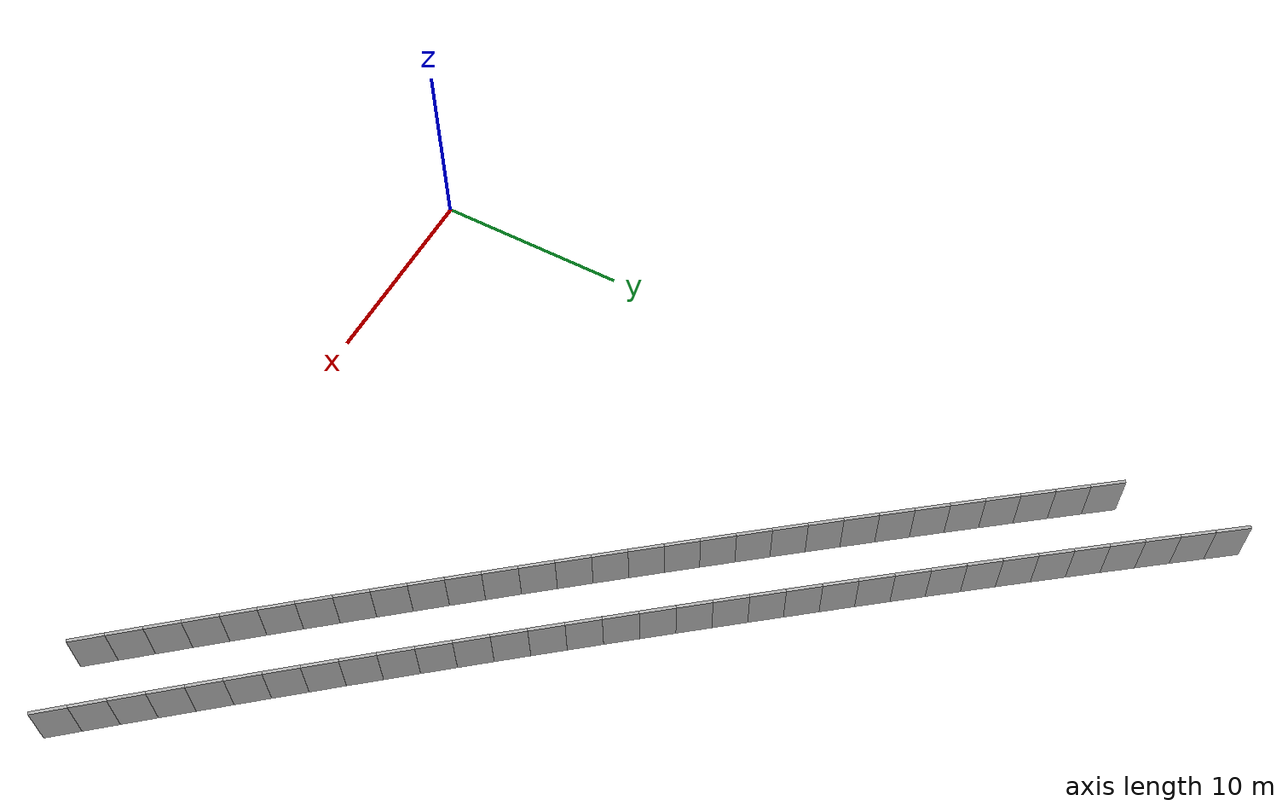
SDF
<?xml version="1.0" ?>
<sdf version="1.6">
  <model name="sps_4924">
    <pose frame="">0 0 0 0 -0 0</pose>
    <static>1</static>
    <self_collide>0</self_collide>
    <allow_auto_disable>0</allow_auto_disable>
    <link name="Wall6543">
      <kinematic>0</kinematic>
      <gravity>1</gravity>
      <self_collide>0</self_collide>
      <collision name="collision">
        <geometry>
          <box>
            <size>1.68618 0.15 2.5</size>
          </box>
        </geometry>
        <pose frame="">0 0 0 0 -0 0</pose>
      </collision>
      <visual name="visual">
        <geometry>
          <box>
            <size>1.68618 0.15 2.5</size>
          </box>
        </geometry>
        <pose frame="">0 0 0 0 -0 0</pose>
        <cast_shadows>1</cast_shadows>
        <transparency>0.0</transparency>
      </visual>
      <pose frame="">0.985374 37.1792 1.25 0 0 -0.926926</pose>
    </link>
    <link name="Wall6544">
      <kinematic>0</kinematic>
      <gravity>1</gravity>
      <self_collide>0</self_collide>
      <collision name="collision">
        <geometry>
          <box>
            <size>1.68609 0.15 2.5</size>
          </box>
        </geometry>
        <pose frame="">0 0 0 0 -0 0</pose>
      </collision>
      <visual name="visual">
        <geometry>
          <box>
            <size>1.68609 0.15 2.5</size>
          </box>
        </geometry>
        <pose frame="">0 0 0 0 -0 0</pose>
        <cast_shadows>1</cast_shadows>
        <transparency>0.0</transparency>
      </visual>
      <pose frame="">1.99856 35.8314 1.25 0 0 -0.925435</pose>
    </link>
    <link name="Wall6545">
      <kinematic>0</kinematic>
      <gravity>1</gravity>
      <self_collide>0</self_collide>
      <collision name="collision">
        <geometry>
          <box>
            <size>1.68644 0.15 2.5</size>
          </box>
        </geometry>
        <pose frame="">0 0 0 0 -0 0</pose>
      </collision>
      <visual name="visual">
        <geometry>
          <box>
            <size>1.68644 0.15 2.5</size>
          </box>
        </geometry>
        <pose frame="">0 0 0 0 -0 0</pose>
        <cast_shadows>1</cast_shadows>
        <transparency>0.0</transparency>
      </visual>
      <pose frame="">3.01406 34.4852 1.25 0 0 -0.923596</pose>
    </link>
    <link name="Wall6546">
      <kinematic>0</kinematic>
      <gravity>1</gravity>
      <self_collide>0</self_collide>
      <collision name="collision">
        <geometry>
          <box>
            <size>1.68606 0.15 2.5</size>
          </box>
        </geometry>
        <pose frame="">0 0 0 0 -0 0</pose>
      </collision>
      <visual name="visual">
        <geometry>
          <box>
            <size>1.68606 0.15 2.5</size>
          </box>
        </geometry>
        <pose frame="">0 0 0 0 -0 0</pose>
        <cast_shadows>1</cast_shadows>
        <transparency>0.0</transparency>
      </visual>
      <pose frame="">4.03188 33.1408 1.25 0 0 -0.921974</pose>
    </link>
    <link name="Wall6547">
      <kinematic>0</kinematic>
      <gravity>1</gravity>
      <self_collide>0</self_collide>
      <collision name="collision">
        <geometry>
          <box>
            <size>1.68619 0.15 2.5</size>
          </box>
        </geometry>
        <pose frame="">0 0 0 0 -0 0</pose>
      </collision>
      <visual name="visual">
        <geometry>
          <box>
            <size>1.68619 0.15 2.5</size>
          </box>
        </geometry>
        <pose frame="">0 0 0 0 -0 0</pose>
        <cast_shadows>1</cast_shadows>
        <transparency>0.0</transparency>
      </visual>
      <pose frame="">5.05187 31.7982 1.25 0 0 -0.920258</pose>
    </link>
    <link name="Wall6548">
      <kinematic>0</kinematic>
      <gravity>1</gravity>
      <self_collide>0</self_collide>
      <collision name="collision">
        <geometry>
          <box>
            <size>1.68626 0.15 2.5</size>
          </box>
        </geometry>
        <pose frame="">0 0 0 0 -0 0</pose>
      </collision>
      <visual name="visual">
        <geometry>
          <box>
            <size>1.68626 0.15 2.5</size>
          </box>
        </geometry>
        <pose frame="">0 0 0 0 -0 0</pose>
        <cast_shadows>1</cast_shadows>
        <transparency>0.0</transparency>
      </visual>
      <pose frame="">6.07415 30.4572 1.25 0 0 -0.918652</pose>
    </link>
    <link name="Wall6549">
      <kinematic>0</kinematic>
      <gravity>1</gravity>
      <self_collide>0</self_collide>
      <collision name="collision">
        <geometry>
          <box>
            <size>1.68603 0.15 2.5</size>
          </box>
        </geometry>
        <pose frame="">0 0 0 0 -0 0</pose>
      </collision>
      <visual name="visual">
        <geometry>
          <box>
            <size>1.68603 0.15 2.5</size>
          </box>
        </geometry>
        <pose frame="">0 0 0 0 -0 0</pose>
        <cast_shadows>1</cast_shadows>
        <transparency>0.0</transparency>
      </visual>
      <pose frame="">7.09866 29.118 1.25 0 0 -0.916862</pose>
    </link>
    <link name="Wall6550">
      <kinematic>0</kinematic>
      <gravity>1</gravity>
      <self_collide>0</self_collide>
      <collision name="collision">
        <geometry>
          <box>
            <size>1.68633 0.15 2.5</size>
          </box>
        </geometry>
        <pose frame="">0 0 0 0 -0 0</pose>
      </collision>
      <visual name="visual">
        <geometry>
          <box>
            <size>1.68633 0.15 2.5</size>
          </box>
        </geometry>
        <pose frame="">0 0 0 0 -0 0</pose>
        <cast_shadows>1</cast_shadows>
        <transparency>0.0</transparency>
      </visual>
      <pose frame="">8.12545 27.7805 1.25 0 0 -0.915264</pose>
    </link>
    <link name="Wall6551">
      <kinematic>0</kinematic>
      <gravity>1</gravity>
      <self_collide>0</self_collide>
      <collision name="collision">
        <geometry>
          <box>
            <size>1.68611 0.15 2.5</size>
          </box>
        </geometry>
        <pose frame="">0 0 0 0 -0 0</pose>
      </collision>
      <visual name="visual">
        <geometry>
          <box>
            <size>1.68611 0.15 2.5</size>
          </box>
        </geometry>
        <pose frame="">0 0 0 0 -0 0</pose>
        <cast_shadows>1</cast_shadows>
        <transparency>0.0</transparency>
      </visual>
      <pose frame="">9.15453 26.4447 1.25 0 0 -0.913474</pose>
    </link>
    <link name="Wall6552">
      <kinematic>0</kinematic>
      <gravity>1</gravity>
      <self_collide>0</self_collide>
      <collision name="collision">
        <geometry>
          <box>
            <size>1.6862 0.15 2.5</size>
          </box>
        </geometry>
        <pose frame="">0 0 0 0 -0 0</pose>
      </collision>
      <visual name="visual">
        <geometry>
          <box>
            <size>1.6862 0.15 2.5</size>
          </box>
        </geometry>
        <pose frame="">0 0 0 0 -0 0</pose>
        <cast_shadows>1</cast_shadows>
        <transparency>0.0</transparency>
      </visual>
      <pose frame="">10.1858 25.1107 1.25 0 0 -0.911867</pose>
    </link>
    <link name="Wall6553">
      <kinematic>0</kinematic>
      <gravity>1</gravity>
      <self_collide>0</self_collide>
      <collision name="collision">
        <geometry>
          <box>
            <size>1.68615 0.15 2.5</size>
          </box>
        </geometry>
        <pose frame="">0 0 0 0 -0 0</pose>
      </collision>
      <visual name="visual">
        <geometry>
          <box>
            <size>1.68615 0.15 2.5</size>
          </box>
        </geometry>
        <pose frame="">0 0 0 0 -0 0</pose>
        <cast_shadows>1</cast_shadows>
        <transparency>0.0</transparency>
      </visual>
      <pose frame="">11.2194 23.7784 1.25 0 0 -0.910194</pose>
    </link>
    <link name="Wall6554">
      <kinematic>0</kinematic>
      <gravity>1</gravity>
      <self_collide>0</self_collide>
      <collision name="collision">
        <geometry>
          <box>
            <size>1.68631 0.15 2.5</size>
          </box>
        </geometry>
        <pose frame="">0 0 0 0 -0 0</pose>
      </collision>
      <visual name="visual">
        <geometry>
          <box>
            <size>1.68631 0.15 2.5</size>
          </box>
        </geometry>
        <pose frame="">0 0 0 0 -0 0</pose>
        <cast_shadows>1</cast_shadows>
        <transparency>0.0</transparency>
      </visual>
      <pose frame="">12.2551 22.4478 1.25 0 0 -0.90848</pose>
    </link>
    <link name="Wall6555">
      <kinematic>0</kinematic>
      <gravity>1</gravity>
      <self_collide>0</self_collide>
      <collision name="collision">
        <geometry>
          <box>
            <size>1.68612 0.15 2.5</size>
          </box>
        </geometry>
        <pose frame="">0 0 0 0 -0 0</pose>
      </collision>
      <visual name="visual">
        <geometry>
          <box>
            <size>1.68612 0.15 2.5</size>
          </box>
        </geometry>
        <pose frame="">0 0 0 0 -0 0</pose>
        <cast_shadows>1</cast_shadows>
        <transparency>0.0</transparency>
      </visual>
      <pose frame="">13.2932 21.119 1.25 0 0 -0.90674</pose>
    </link>
    <link name="Wall6556">
      <kinematic>0</kinematic>
      <gravity>1</gravity>
      <self_collide>0</self_collide>
      <collision name="collision">
        <geometry>
          <box>
            <size>1.68622 0.15 2.5</size>
          </box>
        </geometry>
        <pose frame="">0 0 0 0 -0 0</pose>
      </collision>
      <visual name="visual">
        <geometry>
          <box>
            <size>1.68622 0.15 2.5</size>
          </box>
        </geometry>
        <pose frame="">0 0 0 0 -0 0</pose>
        <cast_shadows>1</cast_shadows>
        <transparency>0.0</transparency>
      </visual>
      <pose frame="">14.3335 19.792 1.25 0 0 -0.905083</pose>
    </link>
    <link name="Wall6557">
      <kinematic>0</kinematic>
      <gravity>1</gravity>
      <self_collide>0</self_collide>
      <collision name="collision">
        <geometry>
          <box>
            <size>1.68634 0.15 2.5</size>
          </box>
        </geometry>
        <pose frame="">0 0 0 0 -0 0</pose>
      </collision>
      <visual name="visual">
        <geometry>
          <box>
            <size>1.68634 0.15 2.5</size>
          </box>
        </geometry>
        <pose frame="">0 0 0 0 -0 0</pose>
        <cast_shadows>1</cast_shadows>
        <transparency>0.0</transparency>
      </visual>
      <pose frame="">15.3761 18.4666 1.25 0 0 -0.903528</pose>
    </link>
    <link name="Wall6558">
      <kinematic>0</kinematic>
      <gravity>1</gravity>
      <self_collide>0</self_collide>
      <collision name="collision">
        <geometry>
          <box>
            <size>1.68622 0.15 2.5</size>
          </box>
        </geometry>
        <pose frame="">0 0 0 0 -0 0</pose>
      </collision>
      <visual name="visual">
        <geometry>
          <box>
            <size>1.68622 0.15 2.5</size>
          </box>
        </geometry>
        <pose frame="">0 0 0 0 -0 0</pose>
        <cast_shadows>1</cast_shadows>
        <transparency>0.0</transparency>
      </visual>
      <pose frame="">16.4209 17.143 1.25 0 0 -0.901629</pose>
    </link>
    <link name="Wall6559">
      <kinematic>0</kinematic>
      <gravity>1</gravity>
      <self_collide>0</self_collide>
      <collision name="collision">
        <geometry>
          <box>
            <size>1.68605 0.15 2.5</size>
          </box>
        </geometry>
        <pose frame="">0 0 0 0 -0 0</pose>
      </collision>
      <visual name="visual">
        <geometry>
          <box>
            <size>1.68605 0.15 2.5</size>
          </box>
        </geometry>
        <pose frame="">0 0 0 0 -0 0</pose>
        <cast_shadows>1</cast_shadows>
        <transparency>0.0</transparency>
      </visual>
      <pose frame="">17.4679 15.8213 1.25 0 0 -0.900069</pose>
    </link>
    <link name="Wall6560">
      <kinematic>0</kinematic>
      <gravity>1</gravity>
      <self_collide>0</self_collide>
      <collision name="collision">
        <geometry>
          <box>
            <size>1.68611 0.15 2.5</size>
          </box>
        </geometry>
        <pose frame="">0 0 0 0 -0 0</pose>
      </collision>
      <visual name="visual">
        <geometry>
          <box>
            <size>1.68611 0.15 2.5</size>
          </box>
        </geometry>
        <pose frame="">0 0 0 0 -0 0</pose>
        <cast_shadows>1</cast_shadows>
        <transparency>0.0</transparency>
      </visual>
      <pose frame="">18.5171 14.5015 1.25 0 0 -0.898108</pose>
    </link>
    <link name="Wall6561">
      <kinematic>0</kinematic>
      <gravity>1</gravity>
      <self_collide>0</self_collide>
      <collision name="collision">
        <geometry>
          <box>
            <size>1.6862 0.15 2.5</size>
          </box>
        </geometry>
        <pose frame="">0 0 0 0 -0 0</pose>
      </collision>
      <visual name="visual">
        <geometry>
          <box>
            <size>1.6862 0.15 2.5</size>
          </box>
        </geometry>
        <pose frame="">0 0 0 0 -0 0</pose>
        <cast_shadows>1</cast_shadows>
        <transparency>0.0</transparency>
      </visual>
      <pose frame="">19.5687 13.1834 1.25 0 0 -0.896762</pose>
    </link>
    <link name="Wall6562">
      <kinematic>0</kinematic>
      <gravity>1</gravity>
      <self_collide>0</self_collide>
      <collision name="collision">
        <geometry>
          <box>
            <size>1.68621 0.15 2.5</size>
          </box>
        </geometry>
        <pose frame="">0 0 0 0 -0 0</pose>
      </collision>
      <visual name="visual">
        <geometry>
          <box>
            <size>1.68621 0.15 2.5</size>
          </box>
        </geometry>
        <pose frame="">0 0 0 0 -0 0</pose>
        <cast_shadows>1</cast_shadows>
        <transparency>0.0</transparency>
      </visual>
      <pose frame="">20.6223 11.8669 1.25 0 0 -0.894959</pose>
    </link>
    <link name="Wall6563">
      <kinematic>0</kinematic>
      <gravity>1</gravity>
      <self_collide>0</self_collide>
      <collision name="collision">
        <geometry>
          <box>
            <size>1.68621 0.15 2.5</size>
          </box>
        </geometry>
        <pose frame="">0 0 0 0 -0 0</pose>
      </collision>
      <visual name="visual">
        <geometry>
          <box>
            <size>1.68621 0.15 2.5</size>
          </box>
        </geometry>
        <pose frame="">0 0 0 0 -0 0</pose>
        <cast_shadows>1</cast_shadows>
        <transparency>0.0</transparency>
      </visual>
      <pose frame="">21.6782 10.5522 1.25 0 0 -0.893336</pose>
    </link>
    <link name="Wall6564">
      <kinematic>0</kinematic>
      <gravity>1</gravity>
      <self_collide>0</self_collide>
      <collision name="collision">
        <geometry>
          <box>
            <size>1.68635 0.15 2.5</size>
          </box>
        </geometry>
        <pose frame="">0 0 0 0 -0 0</pose>
      </collision>
      <visual name="visual">
        <geometry>
          <box>
            <size>1.68635 0.15 2.5</size>
          </box>
        </geometry>
        <pose frame="">0 0 0 0 -0 0</pose>
        <cast_shadows>1</cast_shadows>
        <transparency>0.0</transparency>
      </visual>
      <pose frame="">22.7362 9.23918 1.25 0 0 -0.89168</pose>
    </link>
    <link name="Wall6565">
      <kinematic>0</kinematic>
      <gravity>1</gravity>
      <self_collide>0</self_collide>
      <collision name="collision">
        <geometry>
          <box>
            <size>1.68616 0.15 2.5</size>
          </box>
        </geometry>
        <pose frame="">0 0 0 0 -0 0</pose>
      </collision>
      <visual name="visual">
        <geometry>
          <box>
            <size>1.68616 0.15 2.5</size>
          </box>
        </geometry>
        <pose frame="">0 0 0 0 -0 0</pose>
        <cast_shadows>1</cast_shadows>
        <transparency>0.0</transparency>
      </visual>
      <pose frame="">23.7965 7.92799 1.25 0 0 -0.889916</pose>
    </link>
    <link name="Wall6566">
      <kinematic>0</kinematic>
      <gravity>1</gravity>
      <self_collide>0</self_collide>
      <collision name="collision">
        <geometry>
          <box>
            <size>1.68617 0.15 2.5</size>
          </box>
        </geometry>
        <pose frame="">0 0 0 0 -0 0</pose>
      </collision>
      <visual name="visual">
        <geometry>
          <box>
            <size>1.68617 0.15 2.5</size>
          </box>
        </geometry>
        <pose frame="">0 0 0 0 -0 0</pose>
        <cast_shadows>1</cast_shadows>
        <transparency>0.0</transparency>
      </visual>
      <pose frame="">24.859 6.6187 1.25 0 0 -0.888243</pose>
    </link>
    <link name="Wall6567">
      <kinematic>0</kinematic>
      <gravity>1</gravity>
      <self_collide>0</self_collide>
      <collision name="collision">
        <geometry>
          <box>
            <size>1.68614 0.15 2.5</size>
          </box>
        </geometry>
        <pose frame="">0 0 0 0 -0 0</pose>
      </collision>
      <visual name="visual">
        <geometry>
          <box>
            <size>1.68614 0.15 2.5</size>
          </box>
        </geometry>
        <pose frame="">0 0 0 0 -0 0</pose>
        <cast_shadows>1</cast_shadows>
        <transparency>0.0</transparency>
      </visual>
      <pose frame="">25.9237 5.3112 1.25 0 0 -0.886547</pose>
    </link>
    <link name="Wall6568">
      <kinematic>0</kinematic>
      <gravity>1</gravity>
      <self_collide>0</self_collide>
      <collision name="collision">
        <geometry>
          <box>
            <size>1.6862 0.15 2.5</size>
          </box>
        </geometry>
        <pose frame="">0 0 0 0 -0 0</pose>
      </collision>
      <visual name="visual">
        <geometry>
          <box>
            <size>1.6862 0.15 2.5</size>
          </box>
        </geometry>
        <pose frame="">0 0 0 0 -0 0</pose>
        <cast_shadows>1</cast_shadows>
        <transparency>0.0</transparency>
      </visual>
      <pose frame="">26.9907 4.00551 1.25 0 0 -0.884845</pose>
    </link>
    <link name="Wall6569">
      <kinematic>0</kinematic>
      <gravity>1</gravity>
      <self_collide>0</self_collide>
      <collision name="collision">
        <geometry>
          <box>
            <size>1.68633 0.15 2.5</size>
          </box>
        </geometry>
        <pose frame="">0 0 0 0 -0 0</pose>
      </collision>
      <visual name="visual">
        <geometry>
          <box>
            <size>1.68633 0.15 2.5</size>
          </box>
        </geometry>
        <pose frame="">0 0 0 0 -0 0</pose>
        <cast_shadows>1</cast_shadows>
        <transparency>0.0</transparency>
      </visual>
      <pose frame="">28.0598 2.70149 1.25 0 0 -0.883269</pose>
    </link>
    <link name="Wall6570">
      <kinematic>0</kinematic>
      <gravity>1</gravity>
      <self_collide>0</self_collide>
      <collision name="collision">
        <geometry>
          <box>
            <size>1.68628 0.15 2.5</size>
          </box>
        </geometry>
        <pose frame="">0 0 0 0 -0 0</pose>
      </collision>
      <visual name="visual">
        <geometry>
          <box>
            <size>1.68628 0.15 2.5</size>
          </box>
        </geometry>
        <pose frame="">0 0 0 0 -0 0</pose>
        <cast_shadows>1</cast_shadows>
        <transparency>0.0</transparency>
      </visual>
      <pose frame="">29.1312 1.39928 1.25 0 0 -0.88142</pose>
    </link>
    <link name="Wall6571">
      <kinematic>0</kinematic>
      <gravity>1</gravity>
      <self_collide>0</self_collide>
      <collision name="collision">
        <geometry>
          <box>
            <size>1.68604 0.15 2.5</size>
          </box>
        </geometry>
        <pose frame="">0 0 0 0 -0 0</pose>
      </collision>
      <visual name="visual">
        <geometry>
          <box>
            <size>1.68604 0.15 2.5</size>
          </box>
        </geometry>
        <pose frame="">0 0 0 0 -0 0</pose>
        <cast_shadows>1</cast_shadows>
        <transparency>0.0</transparency>
      </visual>
      <pose frame="">30.2046 0.0989827 1.25 0 0 -0.879891</pose>
    </link>
    <link name="Wall9169">
      <kinematic>0</kinematic>
      <gravity>1</gravity>
      <self_collide>0</self_collide>
      <collision name="collision">
        <geometry>
          <box>
            <size>1.68079 0.15 2.5</size>
          </box>
        </geometry>
        <pose frame="">0 0 0 0 -0 0</pose>
      </collision>
      <visual name="visual">
        <geometry>
          <box>
            <size>1.68079 0.15 2.5</size>
          </box>
        </geometry>
        <pose frame="">0 0 0 0 -0 0</pose>
        <cast_shadows>1</cast_shadows>
        <transparency>0.0</transparency>
      </visual>
      <pose frame="">33.7429 0.843886 1.25 0 -0 2.26334</pose>
    </link>
    <link name="Wall9170">
      <kinematic>0</kinematic>
      <gravity>1</gravity>
      <self_collide>0</self_collide>
      <collision name="collision">
        <geometry>
          <box>
            <size>1.68082 0.15 2.5</size>
          </box>
        </geometry>
        <pose frame="">0 0 0 0 -0 0</pose>
      </collision>
      <visual name="visual">
        <geometry>
          <box>
            <size>1.68082 0.15 2.5</size>
          </box>
        </geometry>
        <pose frame="">0 0 0 0 -0 0</pose>
        <cast_shadows>1</cast_shadows>
        <transparency>0.0</transparency>
      </visual>
      <pose frame="">32.6706 2.13829 1.25 0 -0 2.26182</pose>
    </link>
    <link name="Wall9171">
      <kinematic>0</kinematic>
      <gravity>1</gravity>
      <self_collide>0</self_collide>
      <collision name="collision">
        <geometry>
          <box>
            <size>1.68088 0.15 2.5</size>
          </box>
        </geometry>
        <pose frame="">0 0 0 0 -0 0</pose>
      </collision>
      <visual name="visual">
        <geometry>
          <box>
            <size>1.68088 0.15 2.5</size>
          </box>
        </geometry>
        <pose frame="">0 0 0 0 -0 0</pose>
        <cast_shadows>1</cast_shadows>
        <transparency>0.0</transparency>
      </visual>
      <pose frame="">31.6005 3.43449 1.25 0 -0 2.26004</pose>
    </link>
    <link name="Wall9172">
      <kinematic>0</kinematic>
      <gravity>1</gravity>
      <self_collide>0</self_collide>
      <collision name="collision">
        <geometry>
          <box>
            <size>1.68094 0.15 2.5</size>
          </box>
        </geometry>
        <pose frame="">0 0 0 0 -0 0</pose>
      </collision>
      <visual name="visual">
        <geometry>
          <box>
            <size>1.68094 0.15 2.5</size>
          </box>
        </geometry>
        <pose frame="">0 0 0 0 -0 0</pose>
        <cast_shadows>1</cast_shadows>
        <transparency>0.0</transparency>
      </visual>
      <pose frame="">30.5326 4.73259 1.25 0 -0 2.25837</pose>
    </link>
    <link name="Wall9173">
      <kinematic>0</kinematic>
      <gravity>1</gravity>
      <self_collide>0</self_collide>
      <collision name="collision">
        <geometry>
          <box>
            <size>1.68074 0.15 2.5</size>
          </box>
        </geometry>
        <pose frame="">0 0 0 0 -0 0</pose>
      </collision>
      <visual name="visual">
        <geometry>
          <box>
            <size>1.68074 0.15 2.5</size>
          </box>
        </geometry>
        <pose frame="">0 0 0 0 -0 0</pose>
        <cast_shadows>1</cast_shadows>
        <transparency>0.0</transparency>
      </visual>
      <pose frame="">29.4669 6.03239 1.25 0 -0 2.25673</pose>
    </link>
    <link name="Wall9174">
      <kinematic>0</kinematic>
      <gravity>1</gravity>
      <self_collide>0</self_collide>
      <collision name="collision">
        <geometry>
          <box>
            <size>1.68076 0.15 2.5</size>
          </box>
        </geometry>
        <pose frame="">0 0 0 0 -0 0</pose>
      </collision>
      <visual name="visual">
        <geometry>
          <box>
            <size>1.68076 0.15 2.5</size>
          </box>
        </geometry>
        <pose frame="">0 0 0 0 -0 0</pose>
        <cast_shadows>1</cast_shadows>
        <transparency>0.0</transparency>
      </visual>
      <pose frame="">28.4035 7.33391 1.25 0 -0 2.25503</pose>
    </link>
    <link name="Wall9175">
      <kinematic>0</kinematic>
      <gravity>1</gravity>
      <self_collide>0</self_collide>
      <collision name="collision">
        <geometry>
          <box>
            <size>1.68093 0.15 2.5</size>
          </box>
        </geometry>
        <pose frame="">0 0 0 0 -0 0</pose>
      </collision>
      <visual name="visual">
        <geometry>
          <box>
            <size>1.68093 0.15 2.5</size>
          </box>
        </geometry>
        <pose frame="">0 0 0 0 -0 0</pose>
        <cast_shadows>1</cast_shadows>
        <transparency>0.0</transparency>
      </visual>
      <pose frame="">27.3422 8.63731 1.25 0 -0 2.25331</pose>
    </link>
    <link name="Wall9176">
      <kinematic>0</kinematic>
      <gravity>1</gravity>
      <self_collide>0</self_collide>
      <collision name="collision">
        <geometry>
          <box>
            <size>1.68074 0.15 2.5</size>
          </box>
        </geometry>
        <pose frame="">0 0 0 0 -0 0</pose>
      </collision>
      <visual name="visual">
        <geometry>
          <box>
            <size>1.68074 0.15 2.5</size>
          </box>
        </geometry>
        <pose frame="">0 0 0 0 -0 0</pose>
        <cast_shadows>1</cast_shadows>
        <transparency>0.0</transparency>
      </visual>
      <pose frame="">26.283 9.94249 1.25 0 -0 2.25167</pose>
    </link>
    <link name="Wall9177">
      <kinematic>0</kinematic>
      <gravity>1</gravity>
      <self_collide>0</self_collide>
      <collision name="collision">
        <geometry>
          <box>
            <size>1.68078 0.15 2.5</size>
          </box>
        </geometry>
        <pose frame="">0 0 0 0 -0 0</pose>
      </collision>
      <visual name="visual">
        <geometry>
          <box>
            <size>1.68078 0.15 2.5</size>
          </box>
        </geometry>
        <pose frame="">0 0 0 0 -0 0</pose>
        <cast_shadows>1</cast_shadows>
        <transparency>0.0</transparency>
      </visual>
      <pose frame="">25.2262 11.2494 1.25 0 -0 2.24997</pose>
    </link>
    <link name="Wall9178">
      <kinematic>0</kinematic>
      <gravity>1</gravity>
      <self_collide>0</self_collide>
      <collision name="collision">
        <geometry>
          <box>
            <size>1.68083 0.15 2.5</size>
          </box>
        </geometry>
        <pose frame="">0 0 0 0 -0 0</pose>
      </collision>
      <visual name="visual">
        <geometry>
          <box>
            <size>1.68083 0.15 2.5</size>
          </box>
        </geometry>
        <pose frame="">0 0 0 0 -0 0</pose>
        <cast_shadows>1</cast_shadows>
        <transparency>0.0</transparency>
      </visual>
      <pose frame="">24.1715 12.5581 1.25 0 -0 2.24827</pose>
    </link>
    <link name="Wall9179">
      <kinematic>0</kinematic>
      <gravity>1</gravity>
      <self_collide>0</self_collide>
      <collision name="collision">
        <geometry>
          <box>
            <size>1.68083 0.15 2.5</size>
          </box>
        </geometry>
        <pose frame="">0 0 0 0 -0 0</pose>
      </collision>
      <visual name="visual">
        <geometry>
          <box>
            <size>1.68083 0.15 2.5</size>
          </box>
        </geometry>
        <pose frame="">0 0 0 0 -0 0</pose>
        <cast_shadows>1</cast_shadows>
        <transparency>0.0</transparency>
      </visual>
      <pose frame="">23.119 13.8686 1.25 0 -0 2.24659</pose>
    </link>
    <link name="Wall9180">
      <kinematic>0</kinematic>
      <gravity>1</gravity>
      <self_collide>0</self_collide>
      <collision name="collision">
        <geometry>
          <box>
            <size>1.68071 0.15 2.5</size>
          </box>
        </geometry>
        <pose frame="">0 0 0 0 -0 0</pose>
      </collision>
      <visual name="visual">
        <geometry>
          <box>
            <size>1.68071 0.15 2.5</size>
          </box>
        </geometry>
        <pose frame="">0 0 0 0 -0 0</pose>
        <cast_shadows>1</cast_shadows>
        <transparency>0.0</transparency>
      </visual>
      <pose frame="">22.0686 15.1807 1.25 0 -0 2.24516</pose>
    </link>
    <link name="Wall9181">
      <kinematic>0</kinematic>
      <gravity>1</gravity>
      <self_collide>0</self_collide>
      <collision name="collision">
        <geometry>
          <box>
            <size>1.6809 0.15 2.5</size>
          </box>
        </geometry>
        <pose frame="">0 0 0 0 -0 0</pose>
      </collision>
      <visual name="visual">
        <geometry>
          <box>
            <size>1.6809 0.15 2.5</size>
          </box>
        </geometry>
        <pose frame="">0 0 0 0 -0 0</pose>
        <cast_shadows>1</cast_shadows>
        <transparency>0.0</transparency>
      </visual>
      <pose frame="">21.0203 16.4946 1.25 0 -0 2.24321</pose>
    </link>
    <link name="Wall9182">
      <kinematic>0</kinematic>
      <gravity>1</gravity>
      <self_collide>0</self_collide>
      <collision name="collision">
        <geometry>
          <box>
            <size>1.68066 0.15 2.5</size>
          </box>
        </geometry>
        <pose frame="">0 0 0 0 -0 0</pose>
      </collision>
      <visual name="visual">
        <geometry>
          <box>
            <size>1.68066 0.15 2.5</size>
          </box>
        </geometry>
        <pose frame="">0 0 0 0 -0 0</pose>
        <cast_shadows>1</cast_shadows>
        <transparency>0.0</transparency>
      </visual>
      <pose frame="">19.9745 17.8104 1.25 0 -0 2.24152</pose>
    </link>
    <link name="Wall9183">
      <kinematic>0</kinematic>
      <gravity>1</gravity>
      <self_collide>0</self_collide>
      <collision name="collision">
        <geometry>
          <box>
            <size>1.6808 0.15 2.5</size>
          </box>
        </geometry>
        <pose frame="">0 0 0 0 -0 0</pose>
      </collision>
      <visual name="visual">
        <geometry>
          <box>
            <size>1.6808 0.15 2.5</size>
          </box>
        </geometry>
        <pose frame="">0 0 0 0 -0 0</pose>
        <cast_shadows>1</cast_shadows>
        <transparency>0.0</transparency>
      </visual>
      <pose frame="">18.9309 19.1279 1.25 0 -0 2.23992</pose>
    </link>
    <link name="Wall9184">
      <kinematic>0</kinematic>
      <gravity>1</gravity>
      <self_collide>0</self_collide>
      <collision name="collision">
        <geometry>
          <box>
            <size>1.68089 0.15 2.5</size>
          </box>
        </geometry>
        <pose frame="">0 0 0 0 -0 0</pose>
      </collision>
      <visual name="visual">
        <geometry>
          <box>
            <size>1.68089 0.15 2.5</size>
          </box>
        </geometry>
        <pose frame="">0 0 0 0 -0 0</pose>
        <cast_shadows>1</cast_shadows>
        <transparency>0.0</transparency>
      </visual>
      <pose frame="">17.8895 20.4472 1.25 0 -0 2.23817</pose>
    </link>
    <link name="Wall9185">
      <kinematic>0</kinematic>
      <gravity>1</gravity>
      <self_collide>0</self_collide>
      <collision name="collision">
        <geometry>
          <box>
            <size>1.6808 0.15 2.5</size>
          </box>
        </geometry>
        <pose frame="">0 0 0 0 -0 0</pose>
      </collision>
      <visual name="visual">
        <geometry>
          <box>
            <size>1.6808 0.15 2.5</size>
          </box>
        </geometry>
        <pose frame="">0 0 0 0 -0 0</pose>
        <cast_shadows>1</cast_shadows>
        <transparency>0.0</transparency>
      </visual>
      <pose frame="">16.8503 21.7683 1.25 0 -0 2.23646</pose>
    </link>
    <link name="Wall9186">
      <kinematic>0</kinematic>
      <gravity>1</gravity>
      <self_collide>0</self_collide>
      <collision name="collision">
        <geometry>
          <box>
            <size>1.68074 0.15 2.5</size>
          </box>
        </geometry>
        <pose frame="">0 0 0 0 -0 0</pose>
      </collision>
      <visual name="visual">
        <geometry>
          <box>
            <size>1.68074 0.15 2.5</size>
          </box>
        </geometry>
        <pose frame="">0 0 0 0 -0 0</pose>
        <cast_shadows>1</cast_shadows>
        <transparency>0.0</transparency>
      </visual>
      <pose frame="">15.8133 23.0911 1.25 0 -0 2.23482</pose>
    </link>
    <link name="Wall9187">
      <kinematic>0</kinematic>
      <gravity>1</gravity>
      <self_collide>0</self_collide>
      <collision name="collision">
        <geometry>
          <box>
            <size>1.68079 0.15 2.5</size>
          </box>
        </geometry>
        <pose frame="">0 0 0 0 -0 0</pose>
      </collision>
      <visual name="visual">
        <geometry>
          <box>
            <size>1.68079 0.15 2.5</size>
          </box>
        </geometry>
        <pose frame="">0 0 0 0 -0 0</pose>
        <cast_shadows>1</cast_shadows>
        <transparency>0.0</transparency>
      </visual>
      <pose frame="">14.7786 24.4156 1.25 0 -0 2.23309</pose>
    </link>
    <link name="Wall9188">
      <kinematic>0</kinematic>
      <gravity>1</gravity>
      <self_collide>0</self_collide>
      <collision name="collision">
        <geometry>
          <box>
            <size>1.68083 0.15 2.5</size>
          </box>
        </geometry>
        <pose frame="">0 0 0 0 -0 0</pose>
      </collision>
      <visual name="visual">
        <geometry>
          <box>
            <size>1.68083 0.15 2.5</size>
          </box>
        </geometry>
        <pose frame="">0 0 0 0 -0 0</pose>
        <cast_shadows>1</cast_shadows>
        <transparency>0.0</transparency>
      </visual>
      <pose frame="">13.7461 25.7419 1.25 0 -0 2.23147</pose>
    </link>
    <link name="Wall9189">
      <kinematic>0</kinematic>
      <gravity>1</gravity>
      <self_collide>0</self_collide>
      <collision name="collision">
        <geometry>
          <box>
            <size>1.68063 0.15 2.5</size>
          </box>
        </geometry>
        <pose frame="">0 0 0 0 -0 0</pose>
      </collision>
      <visual name="visual">
        <geometry>
          <box>
            <size>1.68063 0.15 2.5</size>
          </box>
        </geometry>
        <pose frame="">0 0 0 0 -0 0</pose>
        <cast_shadows>1</cast_shadows>
        <transparency>0.0</transparency>
      </visual>
      <pose frame="">12.7159 27.0699 1.25 0 -0 2.22972</pose>
    </link>
    <link name="Wall9190">
      <kinematic>0</kinematic>
      <gravity>1</gravity>
      <self_collide>0</self_collide>
      <collision name="collision">
        <geometry>
          <box>
            <size>1.68088 0.15 2.5</size>
          </box>
        </geometry>
        <pose frame="">0 0 0 0 -0 0</pose>
      </collision>
      <visual name="visual">
        <geometry>
          <box>
            <size>1.68088 0.15 2.5</size>
          </box>
        </geometry>
        <pose frame="">0 0 0 0 -0 0</pose>
        <cast_shadows>1</cast_shadows>
        <transparency>0.0</transparency>
      </visual>
      <pose frame="">11.688 28.3997 1.25 0 -0 2.22795</pose>
    </link>
    <link name="Wall9191">
      <kinematic>0</kinematic>
      <gravity>1</gravity>
      <self_collide>0</self_collide>
      <collision name="collision">
        <geometry>
          <box>
            <size>1.68091 0.15 2.5</size>
          </box>
        </geometry>
        <pose frame="">0 0 0 0 -0 0</pose>
      </collision>
      <visual name="visual">
        <geometry>
          <box>
            <size>1.68091 0.15 2.5</size>
          </box>
        </geometry>
        <pose frame="">0 0 0 0 -0 0</pose>
        <cast_shadows>1</cast_shadows>
        <transparency>0.0</transparency>
      </visual>
      <pose frame="">10.6623 29.7313 1.25 0 -0 2.22643</pose>
    </link>
    <link name="Wall9192">
      <kinematic>0</kinematic>
      <gravity>1</gravity>
      <self_collide>0</self_collide>
      <collision name="collision">
        <geometry>
          <box>
            <size>1.68077 0.15 2.5</size>
          </box>
        </geometry>
        <pose frame="">0 0 0 0 -0 0</pose>
      </collision>
      <visual name="visual">
        <geometry>
          <box>
            <size>1.68077 0.15 2.5</size>
          </box>
        </geometry>
        <pose frame="">0 0 0 0 -0 0</pose>
        <cast_shadows>1</cast_shadows>
        <transparency>0.0</transparency>
      </visual>
      <pose frame="">9.63866 31.0645 1.25 0 -0 2.22471</pose>
    </link>
    <link name="Wall9193">
      <kinematic>0</kinematic>
      <gravity>1</gravity>
      <self_collide>0</self_collide>
      <collision name="collision">
        <geometry>
          <box>
            <size>1.68079 0.15 2.5</size>
          </box>
        </geometry>
        <pose frame="">0 0 0 0 -0 0</pose>
      </collision>
      <visual name="visual">
        <geometry>
          <box>
            <size>1.68079 0.15 2.5</size>
          </box>
        </geometry>
        <pose frame="">0 0 0 0 -0 0</pose>
        <cast_shadows>1</cast_shadows>
        <transparency>0.0</transparency>
      </visual>
      <pose frame="">8.61736 32.3994 1.25 0 -0 2.22305</pose>
    </link>
    <link name="Wall9194">
      <kinematic>0</kinematic>
      <gravity>1</gravity>
      <self_collide>0</self_collide>
      <collision name="collision">
        <geometry>
          <box>
            <size>1.68085 0.15 2.5</size>
          </box>
        </geometry>
        <pose frame="">0 0 0 0 -0 0</pose>
      </collision>
      <visual name="visual">
        <geometry>
          <box>
            <size>1.68085 0.15 2.5</size>
          </box>
        </geometry>
        <pose frame="">0 0 0 0 -0 0</pose>
        <cast_shadows>1</cast_shadows>
        <transparency>0.0</transparency>
      </visual>
      <pose frame="">7.59835 33.7361 1.25 0 -0 2.22124</pose>
    </link>
    <link name="Wall9195">
      <kinematic>0</kinematic>
      <gravity>1</gravity>
      <self_collide>0</self_collide>
      <collision name="collision">
        <geometry>
          <box>
            <size>1.68099 0.15 2.5</size>
          </box>
        </geometry>
        <pose frame="">0 0 0 0 -0 0</pose>
      </collision>
      <visual name="visual">
        <geometry>
          <box>
            <size>1.68099 0.15 2.5</size>
          </box>
        </geometry>
        <pose frame="">0 0 0 0 -0 0</pose>
        <cast_shadows>1</cast_shadows>
        <transparency>0.0</transparency>
      </visual>
      <pose frame="">6.58153 35.0746 1.25 0 -0 2.21967</pose>
    </link>
    <link name="Wall9196">
      <kinematic>0</kinematic>
      <gravity>1</gravity>
      <self_collide>0</self_collide>
      <collision name="collision">
        <geometry>
          <box>
            <size>1.68058 0.15 2.5</size>
          </box>
        </geometry>
        <pose frame="">0 0 0 0 -0 0</pose>
      </collision>
      <visual name="visual">
        <geometry>
          <box>
            <size>1.68058 0.15 2.5</size>
          </box>
        </geometry>
        <pose frame="">0 0 0 0 -0 0</pose>
        <cast_shadows>1</cast_shadows>
        <transparency>0.0</transparency>
      </visual>
      <pose frame="">5.56704 36.4147 1.25 0 -0 2.2179</pose>
    </link>
    <link name="Wall9197">
      <kinematic>0</kinematic>
      <gravity>1</gravity>
      <self_collide>0</self_collide>
      <collision name="collision">
        <geometry>
          <box>
            <size>1.68092 0.15 2.5</size>
          </box>
        </geometry>
        <pose frame="">0 0 0 0 -0 0</pose>
      </collision>
      <visual name="visual">
        <geometry>
          <box>
            <size>1.68092 0.15 2.5</size>
          </box>
        </geometry>
        <pose frame="">0 0 0 0 -0 0</pose>
        <cast_shadows>1</cast_shadows>
        <transparency>0.0</transparency>
      </visual>
      <pose frame="">4.55486 37.7565 1.25 0 -0 2.21624</pose>
    </link>
    <link name="Wall9198">
      <kinematic>0</kinematic>
      <gravity>1</gravity>
      <self_collide>0</self_collide>
      <collision name="collision">
        <geometry>
          <box>
            <size>1.6807 0.15 2.5</size>
          </box>
        </geometry>
        <pose frame="">0 0 0 0 -0 0</pose>
      </collision>
      <visual name="visual">
        <geometry>
          <box>
            <size>1.6807 0.15 2.5</size>
          </box>
        </geometry>
        <pose frame="">0 0 0 0 -0 0</pose>
        <cast_shadows>1</cast_shadows>
        <transparency>0.0</transparency>
      </visual>
      <pose frame="">3.54485 39.1 1.25 0 -0 2.21462</pose>
    </link>
    <link name="Wall9199">
      <kinematic>0</kinematic>
      <gravity>1</gravity>
      <self_collide>0</self_collide>
      <collision name="collision">
        <geometry>
          <box>
            <size>1.68076 0.15 2.5</size>
          </box>
        </geometry>
        <pose frame="">0 0 0 0 -0 0</pose>
      </collision>
      <visual name="visual">
        <geometry>
          <box>
            <size>1.68076 0.15 2.5</size>
          </box>
        </geometry>
        <pose frame="">0 0 0 0 -0 0</pose>
        <cast_shadows>1</cast_shadows>
        <transparency>0.0</transparency>
      </visual>
      <pose frame="">2.53713 40.4451 1.25 0 -0 2.21291</pose>
    </link>
    <link name="Wall9200">
      <kinematic>0</kinematic>
      <gravity>1</gravity>
      <self_collide>0</self_collide>
      <collision name="collision">
        <geometry>
          <box>
            <size>1.68087 0.15 2.5</size>
          </box>
        </geometry>
        <pose frame="">0 0 0 0 -0 0</pose>
      </collision>
      <visual name="visual">
        <geometry>
          <box>
            <size>1.68087 0.15 2.5</size>
          </box>
        </geometry>
        <pose frame="">0 0 0 0 -0 0</pose>
        <cast_shadows>1</cast_shadows>
        <transparency>0.0</transparency>
      </visual>
      <pose frame="">1.53164 41.792 1.25 0 -0 2.21123</pose>
    </link>
    <link name="Wall9201">
      <kinematic>0</kinematic>
      <gravity>1</gravity>
      <self_collide>0</self_collide>
      <collision name="collision">
        <geometry>
          <box>
            <size>1.68077 0.15 2.5</size>
          </box>
        </geometry>
        <pose frame="">0 0 0 0 -0 0</pose>
      </collision>
      <visual name="visual">
        <geometry>
          <box>
            <size>1.68077 0.15 2.5</size>
          </box>
        </geometry>
        <pose frame="">0 0 0 0 -0 0</pose>
        <cast_shadows>1</cast_shadows>
        <transparency>0.0</transparency>
      </visual>
      <pose frame="">0.528434 43.1406 1.25 0 -0 2.20951</pose>
    </link>
  </model>
</sdf>
